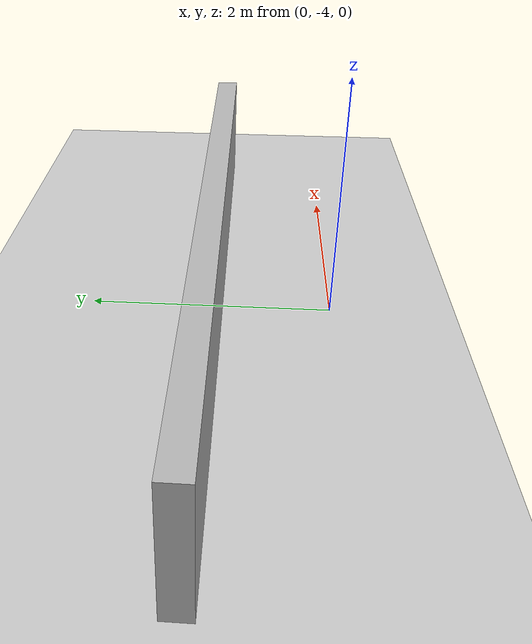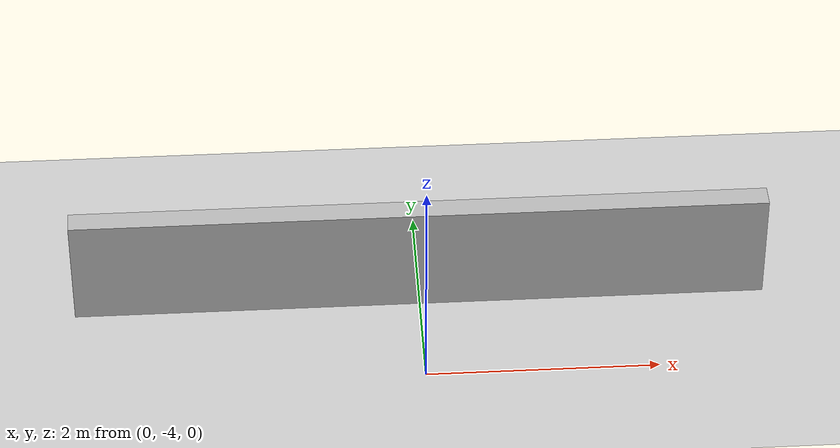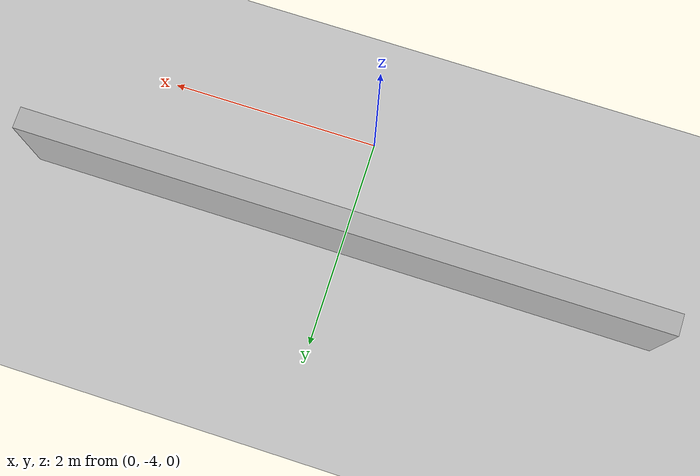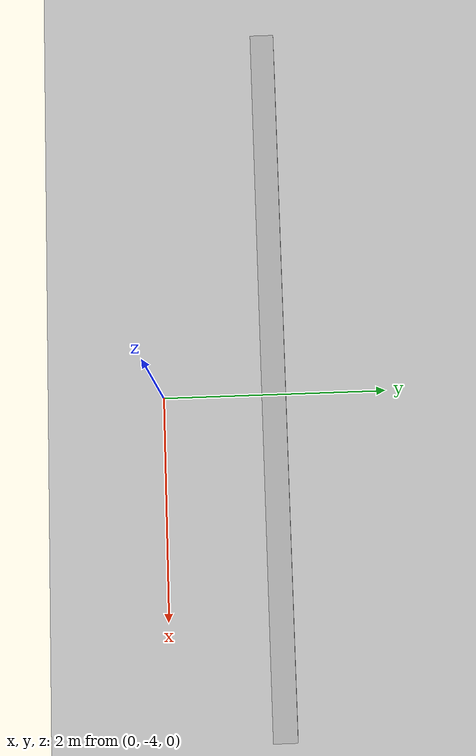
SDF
<?xml version="1.0" ?>
<sdf version="1.8">
  <world name="maze_world">

    <model name="ground_plane">
      <static>true</static>
      <link name="link">
        <collision name="collision">
          <geometry>
            <plane>
              <normal>0 0 1</normal>
            </plane>
          </geometry>
        </collision>
        <visual name="visual">
          <geometry>
            <plane>
              <normal>0 0 1</normal>
              <size>100 100</size>
            </plane>
          </geometry>
        </visual>
      </link>
    </model>

    <model name="wall_1">
      <static>true</static>
      <pose>0 -3 0.5 0 0 0</pose>
      <link name="link">
        <collision name="collision">
          <geometry>
            <box>
              <size>6.0 0.2 1.0</size>
            </box>
          </geometry>
        </collision>
        <visual name="visual">
          <geometry>
            <box>
              <size>6.0 0.2 1.0</size>
            </box>
          </geometry>
        </visual>
      </link>
    </model>

  </world>
</sdf>
